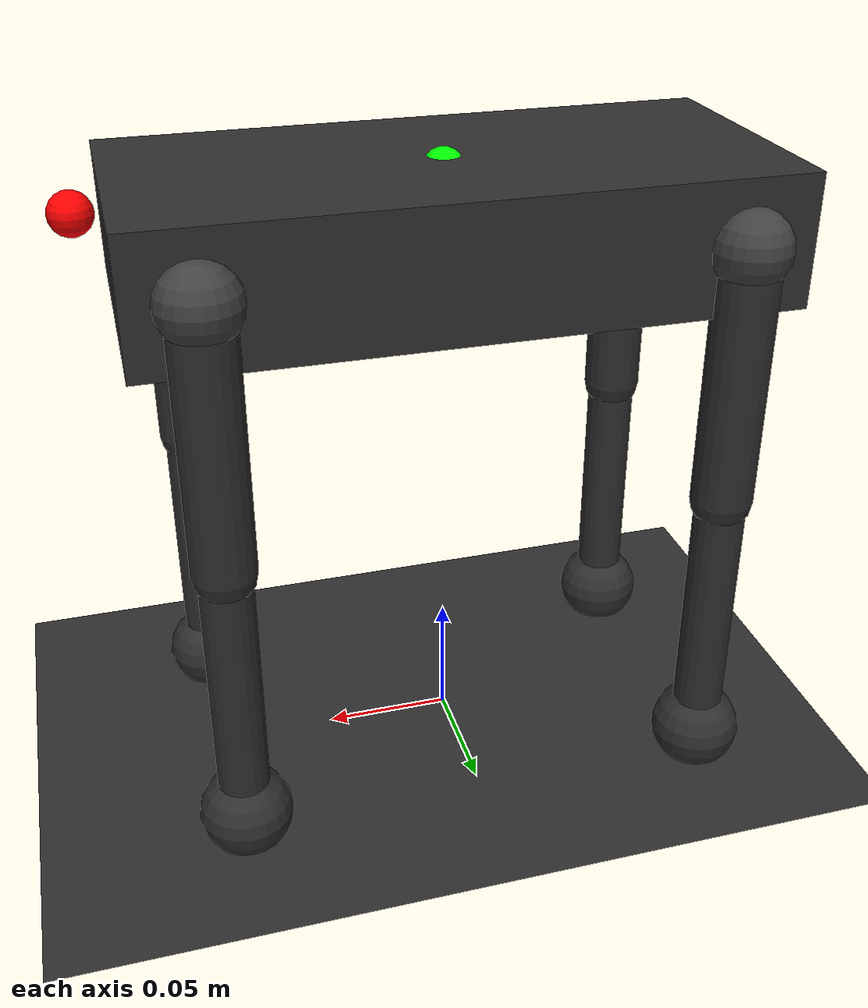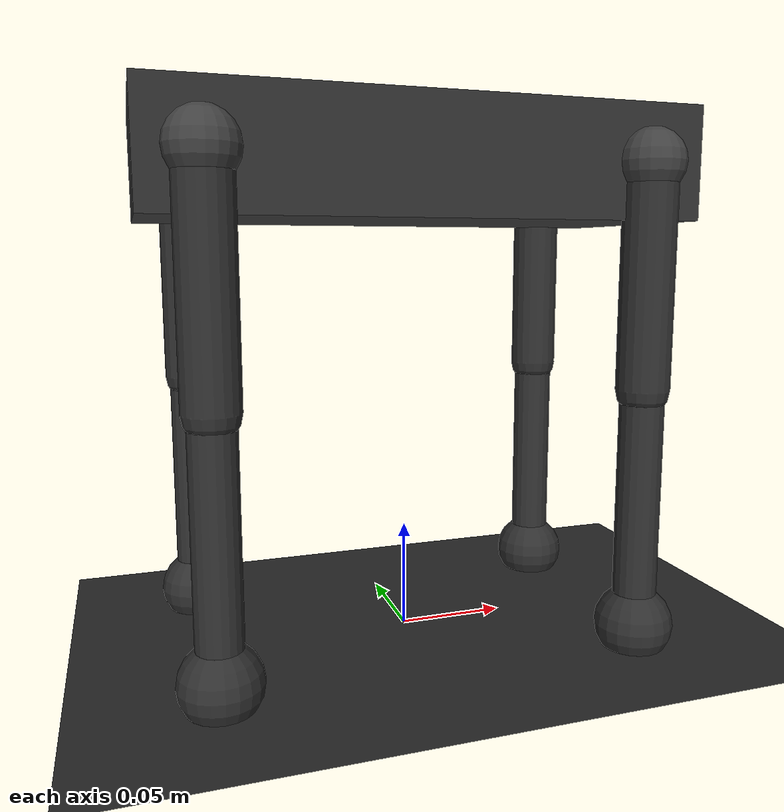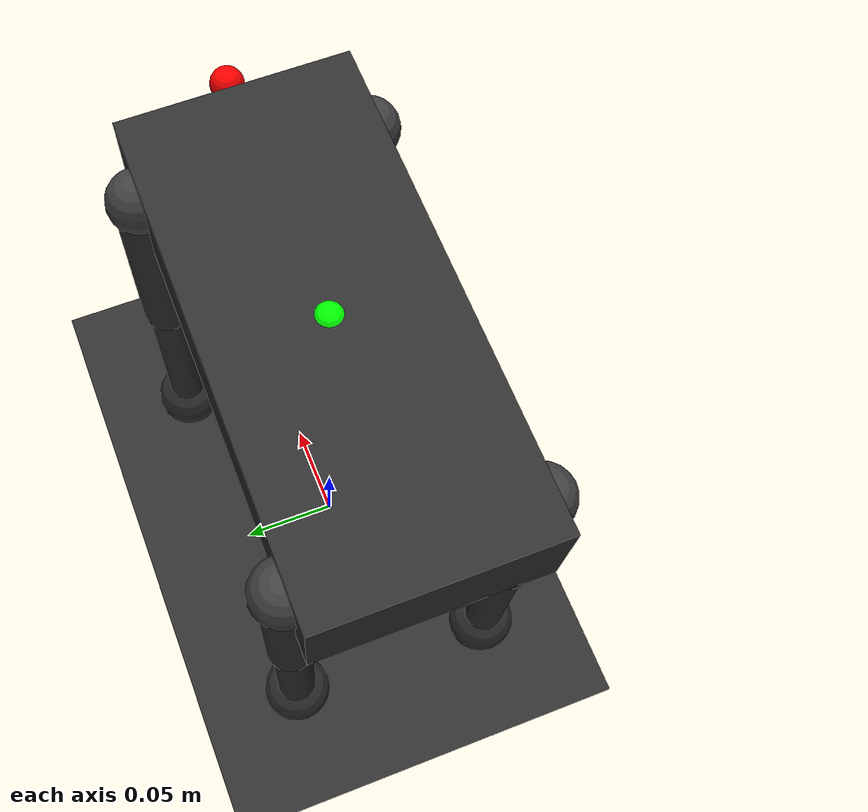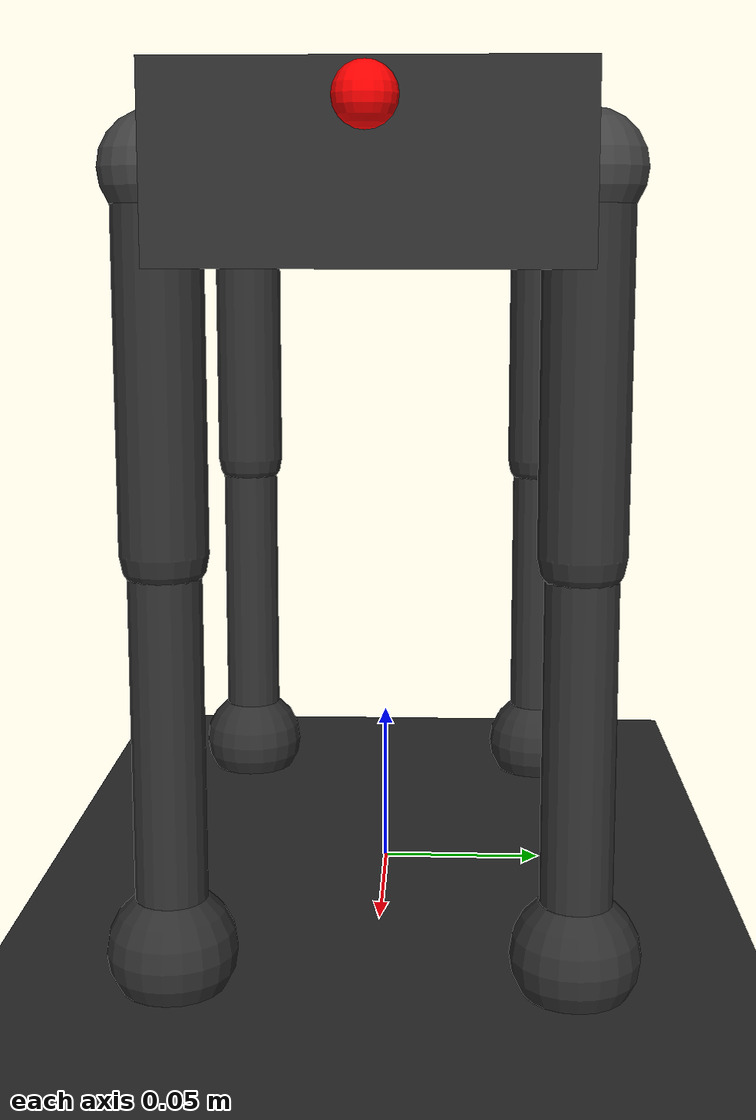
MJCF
<mujoco model="pupper_like">
  <compiler angle="radian" autolimits="true"/>
  <option timestep="0.002" gravity="0 0 -9.81" iterations="50" solver="Newton"/>
  <visual>
    <headlight ambient="0.4 0.4 0.4" diffuse="0.8 0.8 0.8" specular="0.2 0.2 0.2"/>
    <rgba haze="0.15 0.25 0.35 1"/>
  </visual>

  <default>
    <default class="visual">
      <geom contype="0" conaffinity="0" group="2" rgba="0.25 0.25 0.25 1"/>
    </default>
    <default class="collision">
      <geom group="3" friction="1.2 0.02 0.01" solimp="0.9 0.95 0.001" solref="0.004 1"/>
    </default>
    <joint damping="1.5" armature="0.01" frictionloss="0.02"/>
    <position kp="35" ctrllimited="true" ctrlrange="-1.6 1.6"/>
    <geom type="capsule" rgba="0.18 0.18 0.18 1" size="0.012"/>
  </default>

  <asset>
    <texture type="skybox" builtin="gradient" rgb1="0.75 0.85 0.95" rgb2="0.98 0.99 1" width="256" height="256"/>
    <texture name="ground_tex" type="2d" builtin="checker" rgb1="0.18 0.22 0.18" rgb2="0.22 0.26 0.22" width="256" height="256"/>
    <material name="ground_mat" texture="ground_tex" texrepeat="6 6" reflectance="0.05"/>
    <material name="body_mat" rgba="0.12 0.12 0.14 1"/>
    <material name="leg_mat" rgba="0.28 0.28 0.30 1"/>
    <material name="foot_mat" rgba="0.10 0.10 0.10 1"/>
  </asset>

  <worldbody>
    <light pos="0 0 2.5" dir="0 0 -1"/>
    <geom name="ground" type="plane" size="4 4 0.1" material="ground_mat" friction="1.4 0.03 0.01"/>
    <camera name="overview_camera" pos="-2.4 -1.6 1.1" xyaxes="0.95 -0.3 0 0.1 0.3 0.95" fovy="55"/>

    <body name="torso" pos="0 0 0.22">
      <freejoint/>
      <inertial pos="0 0 0" mass="1.2" diaginertia="0.010 0.024 0.026"/>
      <geom name="torso_geom" type="box" size="0.12 0.055 0.025" material="body_mat"/>
      <site name="imu_site" pos="0 0 0.02" size="0.008" rgba="0 1 0 1"/>
      <site name="front_camera_site" pos="0.13 0 0.015" size="0.008" rgba="1 0 0 1"/>
      <camera name="front_camera" pos="0.13 0 0.015" quat="0.7071068 0 -0.7071068 0" fovy="75"/>

      <body name="fl_abad_link" pos="0.095 0.055 0">
        <joint name="fl_abduction" type="hinge" axis="1 0 0" range="-0.7 0.7"/>
        <inertial pos="0 0 -0.01" mass="0.08" diaginertia="0.00015 0.00015 0.00008"/>
        <geom class="visual" type="sphere" size="0.015" pos="0 0 0" material="leg_mat"/>
        <geom class="collision" type="sphere" size="0.015" pos="0 0 0" material="leg_mat"/>
        <body name="fl_thigh" pos="0 0 0">
          <joint name="fl_hip" type="hinge" axis="0 1 0" range="-1.8 1.3"/>
          <inertial pos="0 0 -0.05" mass="0.18" diaginertia="0.0012 0.0012 0.0002"/>
          <geom fromto="0 0 0 0 0 -0.10" size="0.012" material="leg_mat"/>
          <body name="fl_shank" pos="0 0 -0.10">
            <joint name="fl_knee" type="hinge" axis="0 1 0" range="-2.2 0.0"/>
            <inertial pos="0 0 -0.055" mass="0.12" diaginertia="0.0007 0.0007 0.00012"/>
            <geom fromto="0 0 0 0 0 -0.11" size="0.010" material="leg_mat"/>
            <body name="fl_foot" pos="0 0 -0.11">
              <geom name="fl_foot_geom" type="sphere" size="0.018" material="foot_mat" friction="1.6 0.03 0.01"/>
              <site name="fl_foot_site" pos="0 0 0" size="0.01" rgba="0 0 1 1"/>
            </body>
          </body>
        </body>
      </body>

      <body name="fr_abad_link" pos="0.095 -0.055 0">
        <joint name="fr_abduction" type="hinge" axis="1 0 0" range="-0.7 0.7"/>
        <inertial pos="0 0 -0.01" mass="0.08" diaginertia="0.00015 0.00015 0.00008"/>
        <geom class="visual" type="sphere" size="0.015" pos="0 0 0" material="leg_mat"/>
        <geom class="collision" type="sphere" size="0.015" pos="0 0 0" material="leg_mat"/>
        <body name="fr_thigh" pos="0 0 0">
          <joint name="fr_hip" type="hinge" axis="0 1 0" range="-1.8 1.3"/>
          <inertial pos="0 0 -0.05" mass="0.18" diaginertia="0.0012 0.0012 0.0002"/>
          <geom fromto="0 0 0 0 0 -0.10" size="0.012" material="leg_mat"/>
          <body name="fr_shank" pos="0 0 -0.10">
            <joint name="fr_knee" type="hinge" axis="0 1 0" range="-2.2 0.0"/>
            <inertial pos="0 0 -0.055" mass="0.12" diaginertia="0.0007 0.0007 0.00012"/>
            <geom fromto="0 0 0 0 0 -0.11" size="0.010" material="leg_mat"/>
            <body name="fr_foot" pos="0 0 -0.11">
              <geom name="fr_foot_geom" type="sphere" size="0.018" material="foot_mat" friction="1.6 0.03 0.01"/>
              <site name="fr_foot_site" pos="0 0 0" size="0.01" rgba="0 0 1 1"/>
            </body>
          </body>
        </body>
      </body>

      <body name="rl_abad_link" pos="-0.095 0.055 0">
        <joint name="rl_abduction" type="hinge" axis="1 0 0" range="-0.7 0.7"/>
        <inertial pos="0 0 -0.01" mass="0.08" diaginertia="0.00015 0.00015 0.00008"/>
        <geom class="visual" type="sphere" size="0.015" pos="0 0 0" material="leg_mat"/>
        <geom class="collision" type="sphere" size="0.015" pos="0 0 0" material="leg_mat"/>
        <body name="rl_thigh" pos="0 0 0">
          <joint name="rl_hip" type="hinge" axis="0 1 0" range="-1.8 1.3"/>
          <inertial pos="0 0 -0.05" mass="0.18" diaginertia="0.0012 0.0012 0.0002"/>
          <geom fromto="0 0 0 0 0 -0.10" size="0.012" material="leg_mat"/>
          <body name="rl_shank" pos="0 0 -0.10">
            <joint name="rl_knee" type="hinge" axis="0 1 0" range="-2.2 0.0"/>
            <inertial pos="0 0 -0.055" mass="0.12" diaginertia="0.0007 0.0007 0.00012"/>
            <geom fromto="0 0 0 0 0 -0.11" size="0.010" material="leg_mat"/>
            <body name="rl_foot" pos="0 0 -0.11">
              <geom name="rl_foot_geom" type="sphere" size="0.018" material="foot_mat" friction="1.6 0.03 0.01"/>
              <site name="rl_foot_site" pos="0 0 0" size="0.01" rgba="0 0 1 1"/>
            </body>
          </body>
        </body>
      </body>

      <body name="rr_abad_link" pos="-0.095 -0.055 0">
        <joint name="rr_abduction" type="hinge" axis="1 0 0" range="-0.7 0.7"/>
        <inertial pos="0 0 -0.01" mass="0.08" diaginertia="0.00015 0.00015 0.00008"/>
        <geom class="visual" type="sphere" size="0.015" pos="0 0 0" material="leg_mat"/>
        <geom class="collision" type="sphere" size="0.015" pos="0 0 0" material="leg_mat"/>
        <body name="rr_thigh" pos="0 0 0">
          <joint name="rr_hip" type="hinge" axis="0 1 0" range="-1.8 1.3"/>
          <inertial pos="0 0 -0.05" mass="0.18" diaginertia="0.0012 0.0012 0.0002"/>
          <geom fromto="0 0 0 0 0 -0.10" size="0.012" material="leg_mat"/>
          <body name="rr_shank" pos="0 0 -0.10">
            <joint name="rr_knee" type="hinge" axis="0 1 0" range="-2.2 0.0"/>
            <inertial pos="0 0 -0.055" mass="0.12" diaginertia="0.0007 0.0007 0.00012"/>
            <geom fromto="0 0 0 0 0 -0.11" size="0.010" material="leg_mat"/>
            <body name="rr_foot" pos="0 0 -0.11">
              <geom name="rr_foot_geom" type="sphere" size="0.018" material="foot_mat" friction="1.6 0.03 0.01"/>
              <site name="rr_foot_site" pos="0 0 0" size="0.01" rgba="0 0 1 1"/>
            </body>
          </body>
        </body>
      </body>
    </body>
  </worldbody>

  <actuator>
    <position name="fl_abduction_act" joint="fl_abduction"/>
    <position name="fl_hip_act" joint="fl_hip"/>
    <position name="fl_knee_act" joint="fl_knee"/>
    <position name="fr_abduction_act" joint="fr_abduction"/>
    <position name="fr_hip_act" joint="fr_hip"/>
    <position name="fr_knee_act" joint="fr_knee"/>
    <position name="rl_abduction_act" joint="rl_abduction"/>
    <position name="rl_hip_act" joint="rl_hip"/>
    <position name="rl_knee_act" joint="rl_knee"/>
    <position name="rr_abduction_act" joint="rr_abduction"/>
    <position name="rr_hip_act" joint="rr_hip"/>
    <position name="rr_knee_act" joint="rr_knee"/>
  </actuator>

  <sensor>
    <framequat name="imu_quat" objtype="site" objname="imu_site"/>
    <gyro name="imu_gyro" site="imu_site"/>
    <accelerometer name="imu_accel" site="imu_site"/>
  </sensor>
</mujoco>
